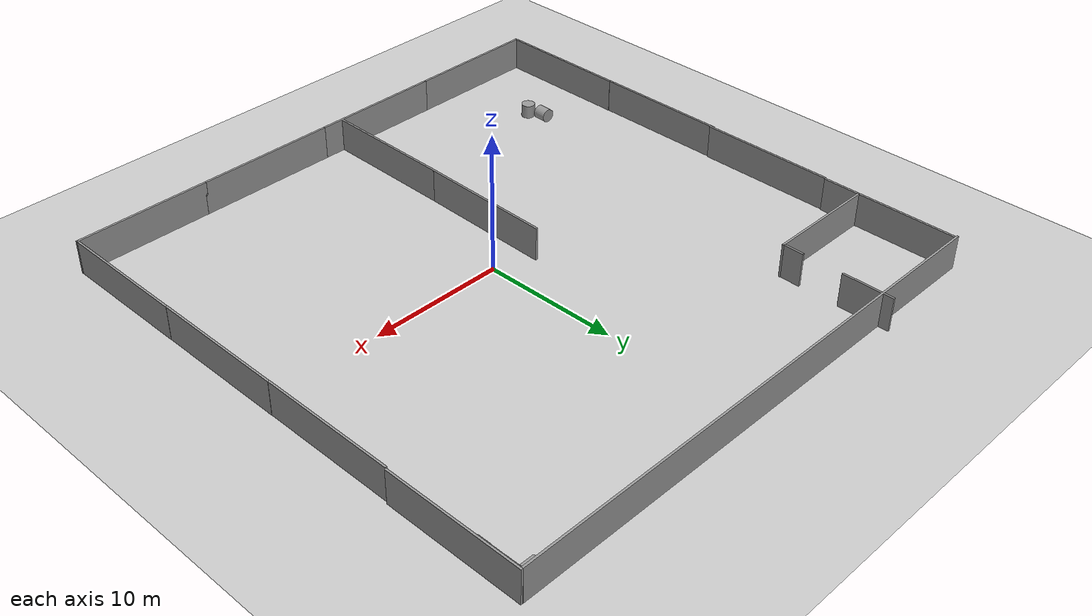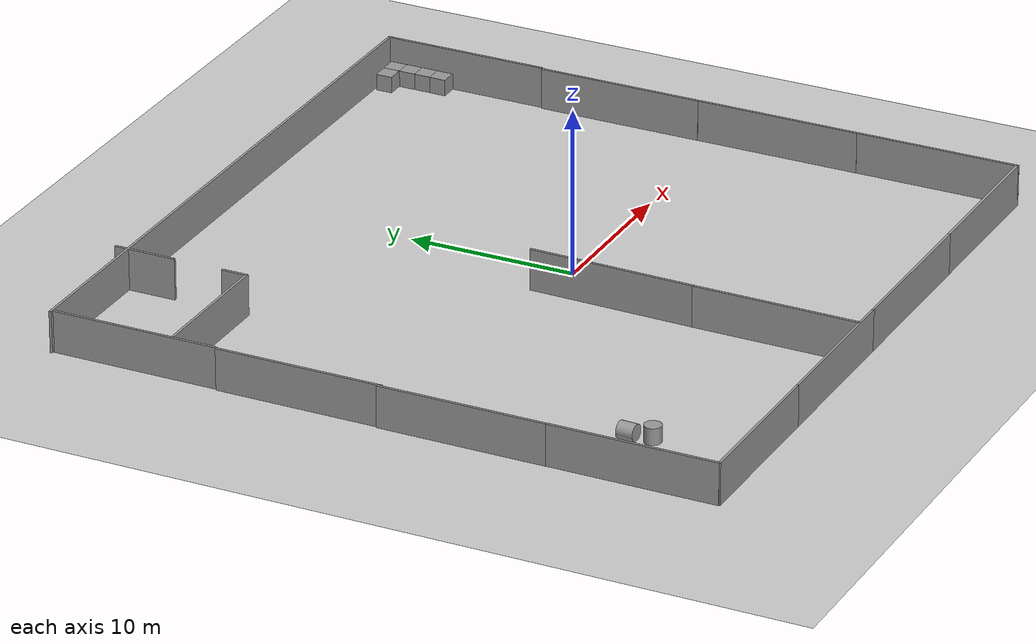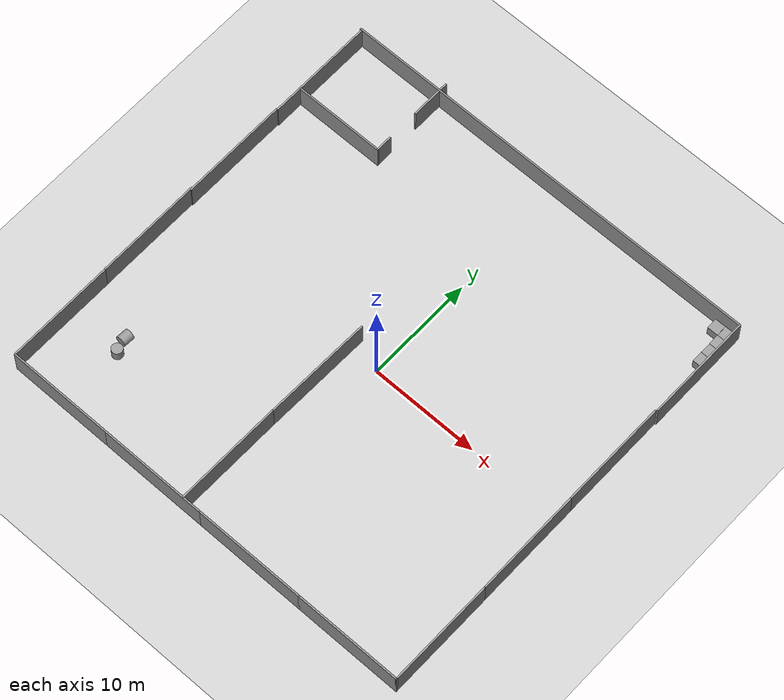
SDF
<sdf version="1.7">
 <world name="default">
  <light name="sun" type="directional">
   <pose>0 0 10 0 -0 0</pose>
   <diffuse>0.8 0.8 0.8 1</diffuse>
   <specular>0.2 0.2 0.2 1</specular>
   <attenuation>
    <range>1000</range>
    <constant>0.9</constant>
    <linear>0.01</linear>
    <quadratic>0.001</quadratic>
   </attenuation>
   <direction>-0.5 0.1 -0.9</direction>
   <spot><inner_angle>0</inner_angle><outer_angle>0</outer_angle><falloff>0</falloff></spot>
  </light>
  <model name="ground_plane">
   <static>1</static>
   <link name="link">
    <collision name="collision">
     <geometry><plane><normal>0 0 1</normal><size>100 100</size></plane></geometry>
     <surface>
      <contact><collide_bitmask>65535</collide_bitmask></contact>
      <friction><ode><mu>100</mu><mu2>50</mu2></ode></friction>
     </surface>
    </collision>
    <visual name="visual">
     <cast_shadows>0</cast_shadows>
     <geometry><plane><normal>0 0 1</normal><size>100 100</size></plane></geometry>
     <material>
      <script><uri>file://media/materials/scripts/gazebo.material</uri><name>Gazebo/Grey</name></script>
     </material>
    </visual>
   </link>
  </model>
  <gravity>0 0 -9.8</gravity>
  <magnetic_field>6e-06 2.3e-05 -4.2e-05</magnetic_field>
  <atmosphere type="adiabatic"/>
  <physics type="ode">
   <max_step_size>0.001</max_step_size>
   <real_time_factor>1</real_time_factor>
   <real_time_update_rate>1000</real_time_update_rate>
  </physics>
  <scene><ambient>0.4 0.4 0.4 1</ambient><background>0.7 0.7 0.7 1</background><shadows>1</shadows></scene>
  <spherical_coordinates>
   <surface_model>EARTH_WGS84</surface_model>
   <latitude_deg>0</latitude_deg>
   <longitude_deg>0</longitude_deg>
   <elevation>0</elevation>
   <heading_deg>0</heading_deg>
  </spherical_coordinates>
  <model name="4x40">
   <pose>-0.999 1.2657 0 0 -0 0</pose>
   <link name="Wall_11">
    <collision name="Wall_11_Collision">
     <geometry><box><size>10 0.15 2.5</size></box></geometry>
     <pose>0 0 1.25 0 -0 0</pose>
    </collision>
    <visual name="Wall_11_Visual">
     <pose>0 0 1.25 0 -0 0</pose>
     <geometry><box><size>10 0.15 2.5</size></box></geometry>
     <material>
      <script><uri>file://media/materials/scripts/gazebo.material</uri><name>Gazebo/Grey</name></script>
      <ambient>1 1 1 1</ambient>
     </material>
     <meta><layer>0</layer></meta>
    </visual>
    <pose>-5.18516 -19.907 0 0 -0 0</pose>
   </link>
   <link name="Wall_12">
    <collision name="Wall_12_Collision">
     <geometry><box><size>10.5 0.15 2.5</size></box></geometry>
     <pose>0 0 1.25 0 -0 0</pose>
    </collision>
    <visual name="Wall_12_Visual">
     <pose>0 0 1.25 0 -0 0</pose>
     <geometry><box><size>10.5 0.15 2.5</size></box></geometry>
     <material>
      <script><uri>file://media/materials/scripts/gazebo.material</uri><name>Gazebo/Grey</name></script>
      <ambient>1 1 1 1</ambient>
     </material>
     <meta><layer>0</layer></meta>
    </visual>
    <pose>4.91484 -19.907 0 0 -0 0</pose>
   </link>
   <link name="Wall_13">
    <collision name="Wall_13_Collision">
     <geometry><box><size>10 0.15 2.5</size></box></geometry>
     <pose>0 0 1.25 0 -0 0</pose>
    </collision>
    <visual name="Wall_13_Visual">
     <pose>0 0 1.25 0 -0 0</pose>
     <geometry><box><size>10 0.15 2.5</size></box></geometry>
     <material>
      <script><uri>file://media/materials/scripts/gazebo.material</uri><name>Gazebo/Grey</name></script>
      <ambient>1 1 1 1</ambient>
     </material>
     <meta><layer>0</layer></meta>
    </visual>
    <pose>15.0148 -19.907 0 0 -0 0</pose>
   </link>
   <link name="Wall_14">
    <collision name="Wall_14_Collision">
     <geometry><box><size>0.16 0.15 2.5</size></box></geometry>
     <pose>0 0 1.25 0 -0 0</pose>
    </collision>
    <visual name="Wall_14_Visual">
     <pose>0 0 1.25 0 -0 0</pose>
     <geometry><box><size>0.16 0.15 2.5</size></box></geometry>
     <material>
      <script><uri>file://media/materials/scripts/gazebo.material</uri><name>Gazebo/Grey</name></script>
      <ambient>1 1 1 1</ambient>
     </material>
     <meta><layer>0</layer></meta>
    </visual>
    <pose>19.9448 -19.907 0 0 -0 0</pose>
   </link>
   <link name="Wall_19">
    <collision name="Wall_19_Collision">
     <geometry><box><size>10 0.15 2.5</size></box></geometry>
     <pose>0 0 1.25 0 -0 0</pose>
    </collision>
    <visual name="Wall_19_Visual">
     <pose>0 0 1.25 0 -0 0</pose>
     <geometry><box><size>10 0.15 2.5</size></box></geometry>
     <material>
      <script><uri>file://media/materials/scripts/gazebo.material</uri><name>Gazebo/Grey</name></script>
      <ambient>1 1 1 1</ambient>
     </material>
     <meta><layer>0</layer></meta>
    </visual>
    <pose>19.9398 -14.982 0 0 -0 1.5708</pose>
   </link>
   <link name="Wall_22">
    <collision name="Wall_22_Collision">
     <geometry><box><size>10 0.15 2.5</size></box></geometry>
     <pose>0 0 1.25 0 -0 0</pose>
    </collision>
    <visual name="Wall_22_Visual">
     <pose>0 0 1.25 0 -0 0</pose>
     <geometry><box><size>10 0.15 2.5</size></box></geometry>
     <material>
      <script><uri>file://media/materials/scripts/gazebo.material</uri><name>Gazebo/Grey</name></script>
      <ambient>1 1 1 1</ambient>
     </material>
     <meta><layer>0</layer></meta>
    </visual>
    <pose>-20.0033 -14.9009 0 0 -0 1.5708</pose>
   </link>
   <link name="Wall_37">
    <collision name="Wall_37_Collision">
     <geometry><box><size>10 0.15 2.5</size></box></geometry>
     <pose>0 0 1.25 0 -0 0</pose>
    </collision>
    <visual name="Wall_37_Visual">
     <pose>0 0 1.25 0 -0 0</pose>
     <geometry><box><size>10 0.15 2.5</size></box></geometry>
     <material>
      <script><uri>file://media/materials/scripts/gazebo.material</uri><name>Gazebo/Grey</name></script>
      <ambient>1 1 1 1</ambient>
     </material>
     <meta><layer>0</layer></meta>
    </visual>
    <pose>-20.0196 -4.91196 0 0 -0 1.5708</pose>
   </link>
   <link name="Wall_39">
    <collision name="Wall_39_Collision">
     <geometry><box><size>10 0.15 2.5</size></box></geometry>
     <pose>0 0 1.25 0 -0 0</pose>
    </collision>
    <visual name="Wall_39_Visual">
     <pose>0 0 1.25 0 -0 0</pose>
     <geometry><box><size>10 0.15 2.5</size></box></geometry>
     <material>
      <script><uri>file://media/materials/scripts/gazebo.material</uri><name>Gazebo/Grey</name></script>
      <ambient>1 1 1 1</ambient>
     </material>
     <meta><layer>0</layer></meta>
    </visual>
    <pose>-19.9361 4.80178 0 0 -0 -1.5708</pose>
   </link>
   <link name="Wall_42">
    <collision name="Wall_42_Collision">
     <geometry><box><size>10 0.15 2.5</size></box></geometry>
     <pose>0 0 1.25 0 -0 0</pose>
    </collision>
    <visual name="Wall_42_Visual">
     <pose>0 0 1.25 0 -0 0</pose>
     <geometry><box><size>10 0.15 2.5</size></box></geometry>
     <material>
      <script><uri>file://media/materials/scripts/gazebo.material</uri><name>Gazebo/Grey</name></script>
      <ambient>1 1 1 1</ambient>
     </material>
     <meta><layer>0</layer></meta>
    </visual>
    <pose>-19.8524 14.7952 0 0 -0 1.5708</pose>
   </link>
   <link name="Wall_44">
    <collision name="Wall_44_Collision">
     <geometry><box><size>10 0.15 2.5</size></box></geometry>
     <pose>0 0 1.25 0 -0 0</pose>
    </collision>
    <visual name="Wall_44_Visual">
     <pose>0 0 1.25 0 -0 0</pose>
     <geometry><box><size>10 0.15 2.5</size></box></geometry>
     <material>
      <script><uri>file://media/materials/scripts/gazebo.material</uri><name>Gazebo/Grey</name></script>
      <ambient>1 1 1 1</ambient>
     </material>
     <meta><layer>0</layer></meta>
    </visual>
    <pose>20.0196 14.9725 0 0 -0 -1.5708</pose>
   </link>
   <link name="Wall_46">
    <collision name="Wall_46_Collision">
     <geometry><box><size>10 0.15 2.5</size></box></geometry>
     <pose>0 0 1.25 0 -0 0</pose>
    </collision>
    <visual name="Wall_46_Visual">
     <pose>0 0 1.25 0 -0 0</pose>
     <geometry><box><size>10 0.15 2.5</size></box></geometry>
     <material>
      <script><uri>file://media/materials/scripts/gazebo.material</uri><name>Gazebo/Grey</name></script>
      <ambient>1 1 1 1</ambient>
     </material>
     <meta><layer>0</layer></meta>
    </visual>
    <pose>19.9144 4.90457 0 0 -0 -1.5708</pose>
   </link>
   <link name="Wall_48">
    <collision name="Wall_48_Collision">
     <geometry><box><size>10 0.15 2.5</size></box></geometry>
     <pose>0 0 1.25 0 -0 0</pose>
    </collision>
    <visual name="Wall_48_Visual">
     <pose>0 0 1.25 0 -0 0</pose>
     <geometry><box><size>10 0.15 2.5</size></box></geometry>
     <material>
      <script><uri>file://media/materials/scripts/gazebo.material</uri><name>Gazebo/Grey</name></script>
      <ambient>1 1 1 1</ambient>
     </material>
     <meta><layer>0</layer></meta>
    </visual>
    <pose>19.9297 -5.06141 0 0 -0 -1.5708</pose>
   </link>
   <link name="Wall_50">
    <collision name="Wall_50_Collision">
     <geometry><box><size>40 0.15 2.5</size></box></geometry>
     <pose>0 0 1.25 0 -0 0</pose>
    </collision>
    <visual name="Wall_50_Visual">
     <pose>0 0 1.25 0 -0 0</pose>
     <geometry><box><size>40 0.15 2.5</size></box></geometry>
     <material>
      <script><uri>file://media/materials/scripts/gazebo.material</uri><name>Gazebo/Grey</name></script>
      <ambient>1 1 1 1</ambient>
     </material>
     <meta><layer>0</layer></meta>
    </visual>
    <pose>-0.047607 19.907 0 0 -0 3.14159</pose>
   </link>
   <link name="Wall_7">
    <collision name="Wall_7_Collision">
     <geometry><box><size>10 0.15 2.5</size></box></geometry>
     <pose>0 0 1.25 0 -0 0</pose>
    </collision>
    <visual name="Wall_7_Visual">
     <pose>0 0 1.25 0 -0 0</pose>
     <geometry><box><size>10 0.15 2.5</size></box></geometry>
     <material>
      <script><uri>file://media/materials/scripts/gazebo.material</uri><name>Gazebo/Grey</name></script>
      <ambient>1 1 1 1</ambient>
     </material>
     <meta><layer>0</layer></meta>
    </visual>
    <pose>-15.0352 -19.907 0 0 -0 0</pose>
   </link>
   <static>1</static>
  </model>
  <model name="unit_cylinder">
   <pose>-16.068 -12.4958 0.503393 -0.005597 0.00389 1.57606</pose>
   <link name="link">
    <inertial>
     <mass>1</mass>
     <inertia><ixx>0.145833</ixx><ixy>0</ixy><ixz>0</ixz><iyy>0.145833</iyy><iyz>0</iyz><izz>0.125</izz></inertia>
    </inertial>
    <collision name="collision">
     <geometry><cylinder><radius>0.5</radius><length>1</length></cylinder></geometry>
    </collision>
    <visual name="visual">
     <geometry><cylinder><radius>0.5</radius><length>1</length></cylinder></geometry>
     <material>
      <script><name>Gazebo/Grey</name><uri>file://media/materials/scripts/gazebo.material</uri></script>
     </material>
    </visual>
   </link>
  </model>
  <model name="wallopen">
   <pose>-10.4254 10.9913 0 0 -0 0</pose>
   <link name="Wall_0">
    <collision name="Wall_0_Collision">
     <geometry><box><size>8.5 0.15 2.5</size></box></geometry>
     <pose>0 0 1.25 0 -0 0</pose>
    </collision>
    <visual name="Wall_0_Visual">
     <pose>0 0 1.25 0 -0 0</pose>
     <geometry><box><size>8.5 0.15 2.5</size></box></geometry>
     <material>
      <script><uri>file://media/materials/scripts/gazebo.material</uri><name>Gazebo/Grey</name></script>
      <ambient>1 1 1 1</ambient>
     </material>
     <meta><layer>0</layer></meta>
    </visual>
    <pose>-6.17535 2.77712 0 0 -0 0</pose>
   </link>
   <link name="Wall_2">
    <collision name="Wall_2_Collision">
     <geometry><box><size>1.5 0.15 2.5</size></box></geometry>
     <pose>0 0 1.25 0 -0 0</pose>
    </collision>
    <visual name="Wall_2_Visual">
     <pose>0 0 1.25 0 -0 0</pose>
     <geometry><box><size>1.5 0.15 2.5</size></box></geometry>
     <material>
      <script><uri>file://media/materials/scripts/gazebo.material</uri><name>Gazebo/Grey</name></script>
      <ambient>1 1 1 1</ambient>
     </material>
     <meta><layer>0</layer></meta>
    </visual>
    <pose>-2.00583 3.54993 0 0 -0 1.5708</pose>
   </link>
   <link name="Wall_7">
    <collision name="Wall_7_Collision">
     <geometry><box><size>3.75 0.15 2.5</size></box></geometry>
     <pose>0 0 1.25 0 -0 0</pose>
    </collision>
    <visual name="Wall_7_Visual">
     <pose>0 0 1.25 0 -0 0</pose>
     <geometry><box><size>3.75 0.15 2.5</size></box></geometry>
     <material>
      <script><uri>file://media/materials/scripts/gazebo.material</uri><name>Gazebo/Grey</name></script>
      <ambient>1 1 1 1</ambient>
     </material>
     <meta><layer>0</layer></meta>
    </visual>
    <pose>-1.99123 9.1163 0 0 -0 -1.5708</pose>
   </link>
   <static>1</static>
  </model>
  <model name="unit_box_6">
   <pose>18.4039 20.4835 0.499995 -0 1e-05 -0.000998</pose>
   <link name="link">
    <inertial>
     <mass>1</mass>
     <inertia>
      <ixx>0.166667</ixx>
      <ixy>0</ixy>
      <ixz>0</ixz>
      <iyy>0.166667</iyy>
      <iyz>0</iyz>
      <izz>0.166667</izz>
     </inertia>
    </inertial>
    <collision name="collision"><geometry><box><size>1 1 1</size></box></geometry></collision>
    <visual name="visual">
     <geometry><box><size>1 1 1</size></box></geometry>
     <material>
      <script><name>Gazebo/Grey</name><uri>file://media/materials/scripts/gazebo.material</uri></script>
     </material>
    </visual>
   </link>
  </model>
  <model name="unit_box">
   <pose>18.405 19.4835 0.499995 0 1e-05 -0.001003</pose>
   <link name="link">
    <inertial>
     <mass>1</mass>
     <inertia>
      <ixx>0.166667</ixx>
      <ixy>0</ixy>
      <ixz>0</ixz>
      <iyy>0.166667</iyy>
      <iyz>0</iyz>
      <izz>0.166667</izz>
     </inertia>
    </inertial>
    <collision name="collision"><geometry><box><size>1 1 1</size></box></geometry></collision>
    <visual name="visual">
     <geometry><box><size>1 1 1</size></box></geometry>
     <material>
      <script><name>Gazebo/Grey</name><uri>file://media/materials/scripts/gazebo.material</uri></script>
     </material>
    </visual>
   </link>
  </model>
  <model name="unit_box_0">
   <pose>18.4156 18.4834 0.499995 1e-05 -0 -0.000946</pose>
   <link name="link">
    <inertial>
     <mass>1</mass>
     <inertia>
      <ixx>0.166667</ixx>
      <ixy>0</ixy>
      <ixz>0</ixz>
      <iyy>0.166667</iyy>
      <iyz>0</iyz>
      <izz>0.166667</izz>
     </inertia>
    </inertial>
    <collision name="collision"><geometry><box><size>1 1 1</size></box></geometry></collision>
    <visual name="visual">
     <geometry><box><size>1 1 1</size></box></geometry>
     <material>
      <script><name>Gazebo/Grey</name><uri>file://media/materials/scripts/gazebo.material</uri></script>
     </material>
    </visual>
   </link>
  </model>
  <model name="unit_box_1">
   <pose>18.3994 17.4834 0.499995 1e-05 -0 -0.000946</pose>
   <link name="link">
    <inertial>
     <mass>1</mass>
     <inertia>
      <ixx>0.166667</ixx>
      <ixy>0</ixy>
      <ixz>0</ixz>
      <iyy>0.166667</iyy>
      <iyz>0</iyz>
      <izz>0.166667</izz>
     </inertia>
    </inertial>
    <collision name="collision"><geometry><box><size>1 1 1</size></box></geometry></collision>
    <visual name="visual">
     <geometry><box><size>1 1 1</size></box></geometry>
     <material>
      <script><name>Gazebo/Grey</name><uri>file://media/materials/scripts/gazebo.material</uri></script>
     </material>
    </visual>
   </link>
  </model>
  <model name="unit_box_2">
   <pose>17.3993 20.4688 0.499995 0 1e-05 0</pose>
   <link name="link">
    <inertial>
     <mass>1</mass>
     <inertia>
      <ixx>0.166667</ixx>
      <ixy>0</ixy>
      <ixz>0</ixz>
      <iyy>0.166667</iyy>
      <iyz>0</iyz>
      <izz>0.166667</izz>
     </inertia>
    </inertial>
    <collision name="collision"><geometry><box><size>1 1 1</size></box></geometry></collision>
    <visual name="visual">
     <geometry><box><size>1 1 1</size></box></geometry>
     <material>
      <script><name>Gazebo/Grey</name><uri>file://media/materials/scripts/gazebo.material</uri></script>
     </material>
    </visual>
   </link>
  </model>
  <model name="unit_cylinder_0">
   <pose>-16.4306 -11.2243 0.5 -1.5708 0.231387 -0.052806</pose>
   <link name="link">
    <inertial>
     <mass>1</mass>
     <inertia><ixx>0.145833</ixx><ixy>0</ixy><ixz>0</ixz><iyy>0.145833</iyy><iyz>0</iyz><izz>0.125</izz></inertia>
    </inertial>
    <collision name="collision">
     <geometry><cylinder><radius>0.5</radius><length>1</length></cylinder></geometry>
    </collision>
    <visual name="visual">
     <geometry><cylinder><radius>0.5</radius><length>1</length></cylinder></geometry>
     <material>
      <script><name>Gazebo/Grey</name><uri>file://media/materials/scripts/gazebo.material</uri></script>
     </material>
    </visual>
   </link>
  </model>
  <model name="Wall">
   <pose>-3.57517 -13.6414 0 0 -0 1.56298</pose>
   <link name="Wall_0">
    <collision name="Wall_0_Collision">
     <geometry><box><size>10 0.15 2.5</size></box></geometry>
     <pose>0 0 1.25 0 -0 0</pose>
    </collision>
    <visual name="Wall_0_Visual">
     <pose>0 0 1.25 0 -0 0</pose>
     <geometry><box><size>10 0.15 2.5</size></box></geometry>
     <material>
      <script><uri>file://media/materials/scripts/gazebo.material</uri><name>Gazebo/Grey</name></script>
      <ambient>1 1 1 1</ambient>
     </material>
     <meta><layer>0</layer></meta>
    </visual>
    <pose>0 -0.626929 0 0 -0 0</pose>
   </link>
   <static>1</static>
  </model>
  <model name="Wall_0">
   <pose>-3.43006 -3.69736 0 0 -0 1.55083</pose>
   <link name="Wall_0">
    <collision name="Wall_0_Collision">
     <geometry><box><size>10 0.15 2.5</size></box></geometry>
     <pose>0 0 1.25 0 -0 0</pose>
    </collision>
    <visual name="Wall_0_Visual">
     <pose>0 0 1.25 0 -0 0</pose>
     <geometry><box><size>10 0.15 2.5</size></box></geometry>
     <material>
      <script><uri>file://media/materials/scripts/gazebo.material</uri><name>Gazebo/Grey</name></script>
      <ambient>1 1 1 1</ambient>
     </material>
     <meta><layer>0</layer></meta>
    </visual>
    <pose>0 -0.626929 0 0 -0 0</pose>
   </link>
   <static>1</static>
  </model>
  <model name="Wall_0">
   <pose>-3.43006 -3.69736 0 0 -0 1.55083</pose>
   <link name="Wall_0">
    <collision name="Wall_0_Collision">
     <geometry><box><size>10 0.15 2.5</size></box></geometry>
     <pose>0 0 1.25 0 -0 0</pose>
    </collision>
    <visual name="Wall_0_Visual">
     <pose>0 0 1.25 0 -0 0</pose>
     <geometry><box><size>10 0.15 2.5</size></box></geometry>
     <material>
      <script><uri>file://media/materials/scripts/gazebo.material</uri><name>Gazebo/Grey</name></script>
      <ambient>1 1 1 1</ambient>
     </material>
     <meta><layer>0</layer></meta>
    </visual>
    <pose>0 -0.626929 0 0 -0 0</pose>
   </link>
   <static>1</static>
  </model>
  <model name="Wall_0">
   <pose>-3.43006 -3.69736 0 0 -0 1.55083</pose>
   <link name="Wall_0">
    <collision name="Wall_0_Collision">
     <geometry><box><size>10 0.15 2.5</size></box></geometry>
     <pose>0 0 1.25 0 -0 0</pose>
    </collision>
    <visual name="Wall_0_Visual">
     <pose>0 0 1.25 0 -0 0</pose>
     <geometry><box><size>10 0.15 2.5</size></box></geometry>
     <material>
      <script><uri>file://media/materials/scripts/gazebo.material</uri><name>Gazebo/Grey</name></script>
      <ambient>1 1 1 1</ambient>
     </material>
     <meta><layer>0</layer></meta>
    </visual>
    <pose>0 -0.626929 0 0 -0 0</pose>
   </link>
   <static>1</static>
  </model>
  <model name="Wall_0">
   <pose>-3.43006 -3.69736 0 0 -0 1.55083</pose>
   <link name="Wall_0">
    <collision name="Wall_0_Collision">
     <geometry><box><size>10 0.15 2.5</size></box></geometry>
     <pose>0 0 1.25 0 -0 0</pose>
    </collision>
    <visual name="Wall_0_Visual">
     <pose>0 0 1.25 0 -0 0</pose>
     <geometry><box><size>10 0.15 2.5</size></box></geometry>
     <material>
      <script><uri>file://media/materials/scripts/gazebo.material</uri><name>Gazebo/Grey</name></script>
      <ambient>1 1 1 1</ambient>
     </material>
     <meta><layer>0</layer></meta>
    </visual>
    <pose>0 -0.626929 0 0 -0 0</pose>
   </link>
   <static>1</static>
  </model>
 </world>
</sdf>
